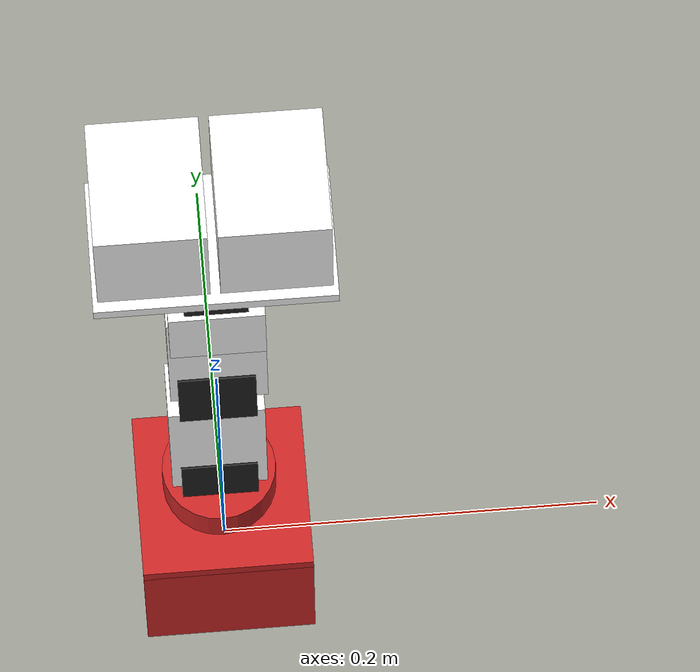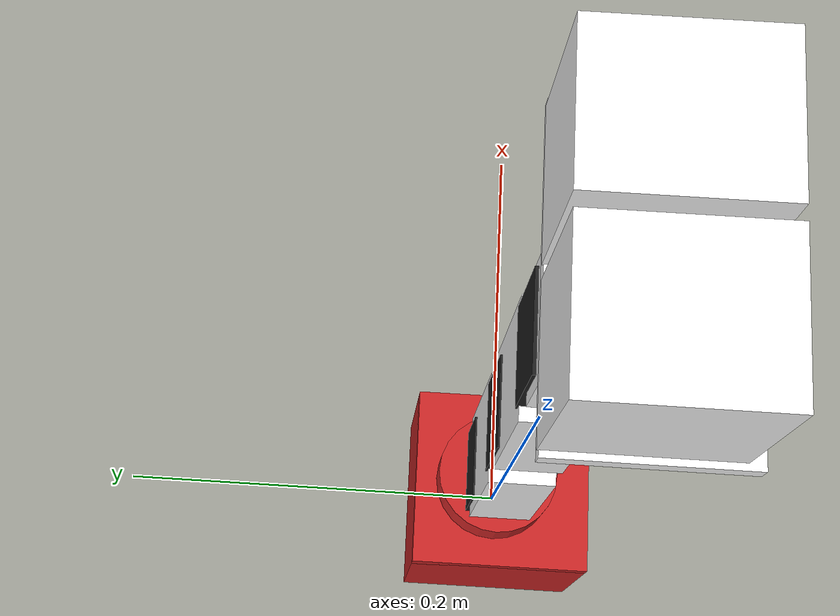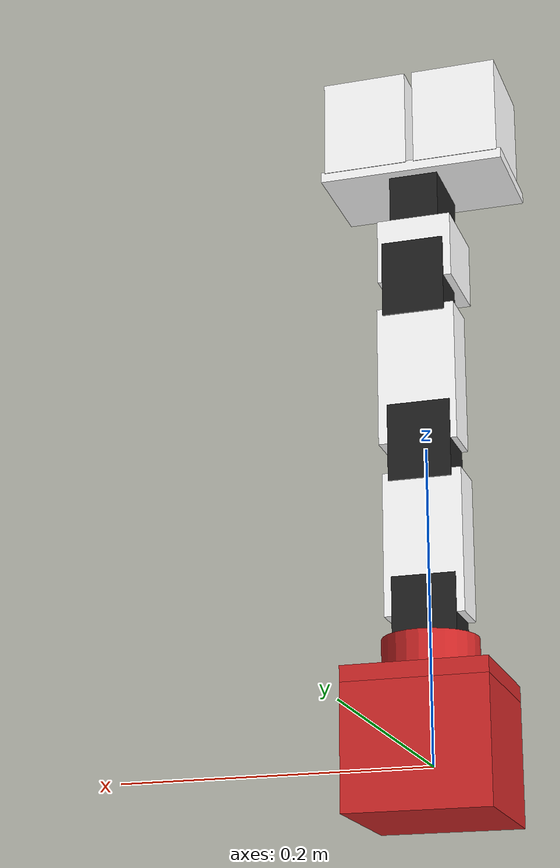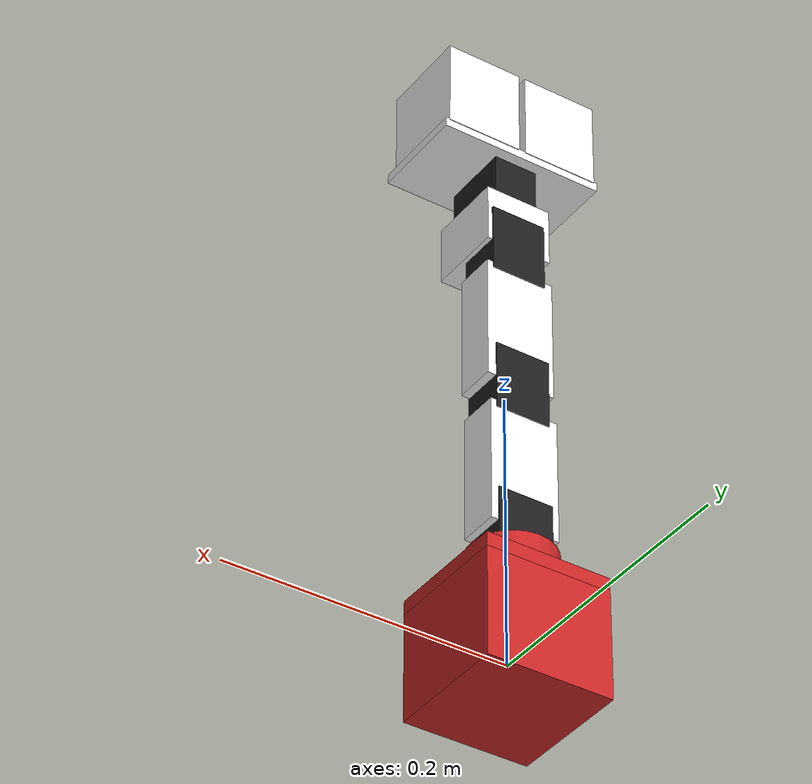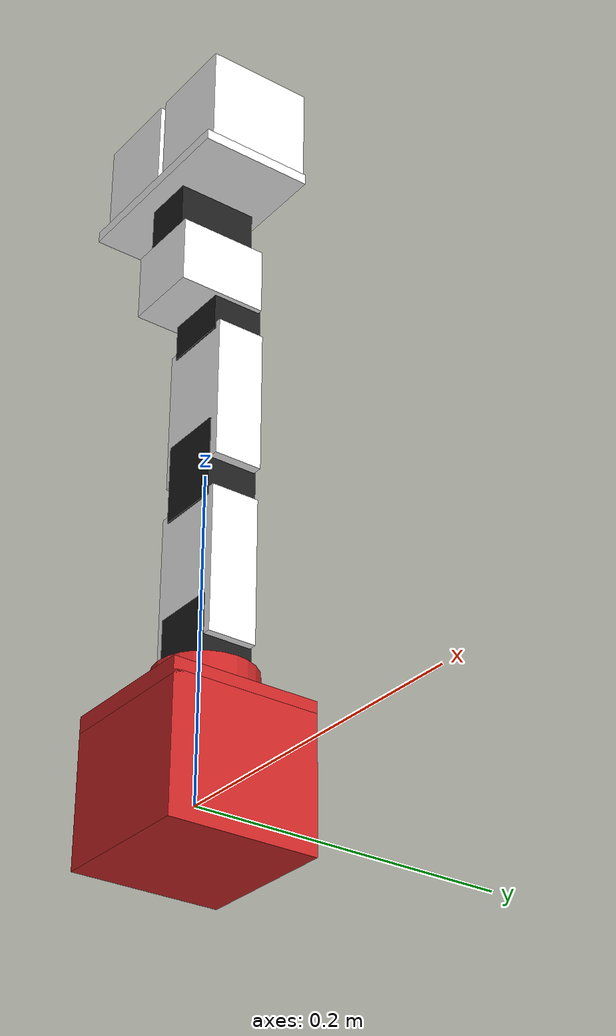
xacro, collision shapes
<?xml version="1.0"?>
<robot name="arm" xmlns:xacro="http://www.ros.org/wiki/xacro">
  <!--Import the arm macro -->
  <xacro:include filename="$(find arm_description)/urdf/arm.xacro"/>

  <xacro:arg name="hardware_interface" default="PositionJointInterface"/>
  <xacro:arg name="robot_name" default="arm"/>
  <xacro:arg name="origin_xyz" default="0 0 0"/>
  <xacro:arg name="origin_rpy" default="0 0 0"/>

  <!-- Fix just for testing -->
  <link name="world"/>

  <!--arm-->
  <xacro:arm hardware_interface="$(arg hardware_interface)" robot_name="$(arg robot_name)" parent="world">
    <origin xyz="$(arg origin_xyz)" rpy="$(arg origin_rpy)" />
  </xacro:arm>

</robot>

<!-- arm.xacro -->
<robot xmlns:xacro="http://www.ros.org/wiki/xacro">

<!-- Import all Gazebo-customization elements, including Gazebo colors -->
<xacro:include filename="$(find arm_description)/urdf/arm.gazebo.xacro" />
<!-- Import Transmissions -->
<xacro:include filename="$(find arm_description)/urdf/arm.transmission.xacro" />
<!-- Import Camera sensor -->
<xacro:include filename="$(find arm_description)/urdf/camera.urdf.xacro"/>

<xacro:macro name="arm" params="parent hardware_interface robot_name *origin">

  <!--joint between {parent} and link_0-->
  <joint name="${parent}_${robot_name}_joint" type="fixed">
    <xacro:insert_block name="origin"/>
    <parent link="${parent}"/>
    <child link="base_link"/>
  </joint>

  <link name="base_link">
    <visual>
      <geometry>
        <mesh filename="package://arm_description/meshes/base_link.stl" scale="0.001 0.001 0.001"/>
      </geometry>
      <origin rpy="0 0 0" xyz="0 0 0"/>
    </visual>
    <collision>
      <geometry>
        <box size="0.09 0.09 0.080"/>
      </geometry>
      <origin rpy="0 0 0" xyz="0 0 0.008"/>
    </collision>
    <inertial>
      <mass value="0.1"/>
      <inertia ixx="1.06682889e+08" ixy="0.0" ixz="0.0" iyy="9.92165844e+07" iyz="0.0" izz="1.26939175e+08"/>
    </inertial>
  </link>

  <joint name="base_1_2" type="fixed">
    <parent link="base_link"/>
    <child link="base_turn"/>
    <origin xyz="-0.0011 -0.011 0.05"/>
  </joint>

  <link name="base_turn">
    <visual>
      <geometry>
        <mesh filename="package://arm_description/meshes/base_turn.stl" scale="0.001 0.001 0.001"/>
      </geometry>
      <origin rpy="0 0 0" xyz="0 0 0"/>
    </visual>
    <collision>
      <geometry>
          <box size="0.09 0.09 0.01"/>
        </geometry>
      <origin rpy="0 0 0" xyz="0.0011 0.011 0"/>
    </collision>
    <inertial>
      <mass value="0.1"/>
      <inertia ixx="1.35223008e+07" ixy="0.0" ixz="0.0" iyy="8.13814925e+06" iyz="0.0" izz="2.14903814e+07"/>
    </inertial>
  </link>

  <joint name="j0" type="revolute">
    <parent link="base_turn"/>
    <child link="base_turn_rot"/>
    <origin xyz="-0.0 0.0155 0.013" rpy = "0 0 -1.57"/>
    <axis xyz="0 0 1" />
    <limit effort="300" velocity="0.1" lower="-2.57" upper="2.57"/>
  </joint>

  <link name="base_turn_rot">
    <visual>
      <geometry>
        <mesh filename="package://arm_description/meshes/base_turn_table_rot.stl" scale="0.001 0.001 0.001"/>
      </geometry>
    </visual>
    <collision>
      <geometry>
          <cylinder radius="0.030" length="0.027"/>
        </geometry>
      <origin rpy="0 0 0" xyz="0 0 0"/>
    </collision>

    <inertial>
      <mass value="0.1"/>
      <inertia ixx="3.41992001e+06" ixy="0.0" ixz="0.0" iyy="2.85587836e+06" iyz="0.0" izz="5.84313870e+06"/>
    </inertial>
  </link>

  <joint name="base_turn_rot_dyn2" type="fixed">
    <parent link="base_turn_rot"/>
    <child link="dyn2"/>
    <origin xyz="0 0 0.0385" rpy="0 1.57 1.57 "/>
  </joint>

  <link name="dyn2">
    <visual>
      <geometry>
        <mesh filename="package://arm_description/meshes/dyn.stl" scale="0.01 0.01 0.01"/>
      </geometry>

      <origin rpy="0 0 0" xyz="0 0 0"/>
    </visual>
    <collision>
      <geometry>
          <box size="0.05 0.0318 0.04"/>
        </geometry>
      <origin rpy="0 0 0" xyz="0.013 0 0"/>
    </collision>
     <inertial>
      <mass value="0.1"/>
      <inertia ixx="6.90013881e+01" ixy="0.0" ixz="0.0" iyy="1.24554875e+02" iyz="0.0" izz="1.04295793e+02"/>
    </inertial>
  </link>

  <joint name="j1" type="revolute">
    <parent link="dyn2"/>
    <child link="dyn2_r"/>
    <origin xyz="0 0 0.0" rpy="0 0 0"/>
    <axis xyz="0 0 1" />
    <limit effort="300" velocity="0.1" lower="-3.14" upper="3.14"/>
  </joint>

  <link name="dyn2_r">

  </link>

  <joint name="dyn2_f4" type="fixed">
    <parent link="dyn2_r"/>
    <child link="f4"/>
    <origin xyz="-0.047 0.0 -0.003" rpy="0 1.57 1.57"/>
  </joint>

  <link name="f4">
    <visual>
      <geometry>
        <mesh filename="package://arm_description/meshes/f4_n_f3.stl" scale="0.001 0.001 0.001"/>
      </geometry>
      <origin rpy="0 0 0" xyz="0 0 0"/>
      <material name="white">
        <color rgba="1 1 1 1"/>
      </material>
    </visual>
    <collision>
      <geometry>
          <box size="0.05 0.091 0.03"/>
        </geometry>
      <origin rpy="0 0 0" xyz="-0.003 -0.014 0"/>
    </collision>
     <inertial>
      <mass value="0.1"/>
      <inertia ixx="6.90013881e+01" ixy="0.0" ixz="0.0" iyy="1.24554875e+02" iyz="0.0" izz="1.04295793e+02"/>
    </inertial>
  </link>

  <joint name="d4_dyn3" type="fixed">
    <parent link="f4"/>
    <child link="dyn3"/>
    <origin xyz="-0.004 0.0645 0 " rpy="-1.57 3.14 1.57"/>
  </joint>

  <link name="dyn3">
    <visual>
      <geometry>
        <mesh filename="package://arm_description/meshes/dyn.stl" scale="0.01 0.01 0.01"/>
      </geometry>
      <origin rpy="0 0 0" xyz="0 0 0"/>
    </visual>
    <collision>
      <geometry>
          <box size="0.05 0.0318 0.04"/>
        </geometry>
      <origin rpy="0 0 0" xyz="0.013 0 0"/>
    </collision>
     <inertial>
      <mass value="0.1"/>
      <inertia ixx="6.90013881e+01" ixy="0.0" ixz="0.0" iyy="1.24554875e+02" iyz="0.0" izz="1.04295793e+02"/>
    </inertial>
  </link>

  <joint name="j2" type="revolute">
    <parent link="dyn3"/>
    <child link="dyn3_r"/>
    <origin xyz="0 0 0.0" rpy="0 0 0"/>
    <axis xyz="0 0 1" />
    <limit effort="300" velocity="0.1" lower="-3.14" upper="3.14"/>
  </joint>

  <link name="dyn3_r">

  </link>

  <joint name="dyn3_f5" type="fixed">
    <parent link="dyn3_r"/>
    <child link="f5"/>
    <origin xyz="-0.046 -0.0 -0.002" rpy="1.57 1.57 3.1415 "/>
  </joint>

  <link name="f5">
    <visual>
      <geometry>
        <mesh filename="package://arm_description/meshes/f4_n_f3.stl" scale="0.001 0.001 0.001"/>
      </geometry>
      <origin rpy="0 0 0" xyz="0 0 0"/>
      <material name="white">
        <color rgba="1 1 1 1"/>
      </material>
    </visual>
    <collision>
      <geometry>
          <box size="0.05 0.091 0.03"/>
      </geometry>
      <origin rpy="0 0 0" xyz="-0.003 -0.014 0"/>
    </collision>

    <inertial>
      <mass value="0.1"/>
      <inertia ixx="1.13130695e+07" ixy="0.0" ixz="0.0" iyy="8.78052401e+06" iyz="0.0" izz="1.72940286e+07"/>
    </inertial>
  </link>

  <joint name="f5_dyn4" type="fixed">
    <parent link="f5"/>
    <child link="dyn4"/>
    <origin xyz="-0.004 0.065 -0.0" rpy="-1.57 3.1415 1.57 "/>
  </joint>

  <link name="dyn4">
    <visual>
      <geometry>
        <mesh filename="package://arm_description/meshes/dyn.stl" scale="0.01 0.01 0.01"/>
      </geometry>

      <origin rpy="0 0 0" xyz="0 0 0"/>
    </visual>
    <collision>
      <geometry>
          <box size="0.05 0.0318 0.04"/>
        </geometry>
      <origin rpy="0 0 0" xyz="0.013 0 0"/>
    </collision>

    <inertial>
      <mass value="0.1"/>
      <inertia ixx="6.90013881e+01" ixy="0.0" ixz="0.0" iyy="1.24554875e+02" iyz="0.0" izz="1.04295793e+02"/>
    </inertial>
  </link>

  <joint name="j3" type="revolute">
    <parent link="dyn4"/>
    <child link="dyn4_r"/>
    <origin xyz="0 0 0.0" rpy="0 0 0"/>
    <axis xyz="0 0 1" />
    <limit effort="300" velocity="0.1" lower="-3.14" upper="3.14"/>
  </joint>

  <link name="dyn4_r">

  </link>

  <joint name="f5_wrist" type="fixed">
    <parent link="dyn4_r"/>
    <child link="wrist"/>
    <origin xyz="-0.017 -0.013 0.003" rpy="1.57 1.57 -1.57"/>
  </joint>

  <link name="wrist">
    <visual>
      <geometry>
        <mesh filename="package://arm_description/meshes/wrist.stl" scale="0.001 0.001 0.001"/>
      </geometry>
      <origin rpy="0 0 0" xyz="0 0 0"/>
      <material name="white">
        <color rgba="1 1 1 1"/>
      </material>
    </visual>
    <collision>
      <geometry>
        <box size="0.048 0.055 0.043"/>
      </geometry>
      <origin rpy="0 0 0" xyz="0.0039 0 -0.01"/>
    </collision>

     <inertial>
      <mass value="0.1"/>
      <inertia ixx="6.90013881e+01" ixy="0.0" ixz="0.0" iyy="1.24554875e+02" iyz="0.0" izz="1.04295793e+02"/>
    </inertial>
  </link>

  <joint name="wrist_dyn5" type="fixed">
    <parent link="wrist"/>
    <child link="dyn5"/>
    <origin xyz="0.0038 -0.013 0.0275" rpy="0 0 1.57"/>
  </joint>

    <link name="dyn5">
    <visual>
      <geometry>
        <mesh filename="package://arm_description/meshes/dyn.stl" scale="0.01 0.01 0.01"/>
      </geometry>
      <origin rpy="0 0 0" xyz="0 0 0"/>
    </visual>
    <collision>
      <geometry>
          <box size="0.05 0.0318 0.04"/>
        </geometry>
      <origin rpy="0 0 0" xyz="0.013 0 0.001"/>
    </collision>

    <inertial>
      <mass value="0.1"/>
      <inertia ixx="6.90013881e+01" ixy="0.0" ixz="0.0" iyy="1.24554875e+02" iyz="0.0" izz="1.04295793e+02"/>
    </inertial>
  </link>

  <joint name="dyn5_dyn5_r" type="fixed">
    <parent link="dyn5"/>
    <child link="dyn5_r"/>
    <origin xyz="0 0 0.0" rpy="0 0 0"/>
    <axis xyz="0 0 1" />
    <limit effort="300" velocity="0.1" lower="-3.14" upper="3.14"/>
  </joint>

  <link name="dyn5_r">

  </link>

  <joint name="wrist_rotate_dyn5" type="fixed">
    <parent link="dyn5_r"/>
    <child link="crawer_base"/>
    <origin xyz="0.015 0 0.019" rpy="0 0 1.57"/>
  </joint>

  <link name="crawer_base">
    <visual>
      <geometry>
        <mesh filename="package://arm_description/meshes/the_crawer_base.stl" scale="0.001 0.001 0.001"/>
      </geometry>
      <origin rpy="0 0 0" xyz="0 0 0"/>
      <material name="white">
        <color rgba="1 1 1 1"/>
      </material>
    </visual>
    <collision>
      <geometry>
          <box size="0.12 0.07 0.007"/>
        </geometry>
      <origin rpy="0 0 0" xyz="0 0 0"/>
    </collision>

    <inertial>
      <mass value="0.1"/>
      <inertia ixx="6.90013881e+01" ixy="0.0" ixz="0.0" iyy="1.24554875e+02" iyz="0.0" izz="1.04295793e+02"/>
    </inertial>
  </link>

  <joint name="crawer_base_crawer_left" type="fixed">
    <parent link="crawer_base"/>
    <child link="crawer_left"/>
    <origin xyz="-0.03 0.015 0.01" rpy="0 -1.57 0"/>
  </joint>

  <link name="crawer_left">
    <visual>
      <geometry>
        <mesh filename="package://arm_description/meshes/the_crawer.stl" scale="0.001 0.001 0.001"/>
      </geometry>
      <origin rpy="0 0 0" xyz="0 0 0"/>
      <material name="white">
        <color rgba="1 1 1 1"/>
      </material>
    </visual>
    <collision>
      <geometry>
          <box size="0.065 0.065 0.055"/>
        </geometry>
      <origin rpy="0 0 0" xyz="0.025 -0.012 0"/>
    </collision>

    <inertial>
      <mass value="0.1"/>
      <inertia ixx="6.90013881e+01" ixy="0.0" ixz="0.0" iyy="1.24554875e+02" iyz="0.0" izz="1.04295793e+02"/>
    </inertial>
  </link>

  <joint name="crawer_base_crawer_right" type="fixed">
    <parent link="crawer_base"/>
    <child link="crawer_right"/>
    <origin xyz="0.03 0.015 0.01" rpy="3.1415 -1.57 0"/>
  </joint>

  <link name="crawer_right">
    <visual>
      <geometry>
        <mesh filename="package://arm_description/meshes/the_crawer.stl" scale="0.001 0.001 0.001"/>
      </geometry>
      <origin rpy="0 0 0" xyz="0 0 0"/>
      <material name="white">
        <color rgba="1 1 1 1"/>
      </material>
    </visual>
    <collision>
      <geometry>
          <box size="0.065 0.065 0.055"/>
        </geometry>
      <origin rpy="0 0 0" xyz="0.025 0.012 0"/>
    </collision>

    <inertial>
      <mass value="0.1"/>
      <inertia ixx="6.90013881e+01" ixy="0.0" ixz="0.0" iyy="1.24554875e+02" iyz="0.0" izz="1.04295793e+02"/>
    </inertial>
  </link>

  <!--Extensions -->
  <xacro:arm_gazebo robot_name="${robot_name}" />
  <xacro:arm_transmission hardware_interface="${hardware_interface}"/>
  <xacro:camera_sensor />

</xacro:macro>

</robot>

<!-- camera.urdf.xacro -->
<robot xmlns:xacro="http://www.ros.org/wiki/xacro" name="camera">

<xacro:property name="pi" value="3.1415926535897931" />

    <xacro:macro name="camera_sensor">
        <joint name="camera_sensor_joint" type="fixed">
            <axis xyz="0 1 0" />
            <origin xyz=" 0 0 0" rpy="0 0 0"/>
            <parent link="base_link"/>
            <child link="camera_link"/>
        </joint>

        <link name="camera_link">
            <collision>
                <origin xyz="0 0 -0.020" rpy="0 0 0"/>
                <geometry>
                    <box size="0.04 0.04 0.015"/>
                </geometry>
            </collision>
            <visual>
                <origin xyz="0 0 -0.020" rpy="0 0 0"/>
                <geometry>
                    <box size="0.04 0.04 0.015"/>
                </geometry>
            </visual>
            <inertial>
                <mass value="0.0001" />
                <origin xyz="0 0 0" rpy="0 0 ${pi}"/>
                <inertia ixx="0.0000001" ixy="0" ixz="0" iyy="0.0000001" iyz="0" izz="0.0000001" />
            </inertial>
        </link>

    <gazebo reference="camera_link">
            <sensor type="camera" name="camera">
                <update_rate>30.0</update_rate>
                <camera name="head">
                    <horizontal_fov>1.3962634</horizontal_fov>
                    <image>
                        <width>800</width>
                        <height>600</height>
                        <format>R8G8B8</format>
                    </image>
                    <clip>
                        <near>0.02</near>
                        <far>300</far>
                    </clip>
                    <noise>
                        <type>gaussian</type>
                        <mean>0.0</mean>
                        <stddev>0.007</stddev>
                    </noise>
                </camera>
                <plugin name="camera_controller" filename="libgazebo_ros_camera.so">
                    <alwaysOn>true</alwaysOn>
                    <updateRate>0.0</updateRate>
                    <cameraName>iRobot/camera</cameraName>
                    <imageTopicName>image_raw</imageTopicName>
                    <cameraInfoTopicName>camera_info</cameraInfoTopicName>
                    <frameName>camera_link</frameName>
                    <hackBaseline>0.07</hackBaseline>
                    <distortionK1>0.0</distortionK1>
                    <distortionK2>0.0</distortionK2>
                    <distortionK3>0.0</distortionK3>
                    <distortionT1>0.0</distortionT1>
                    <distortionT2>0.0</distortionT2>
                </plugin>
            </sensor>
    </gazebo>

    </xacro:macro>

</robot>
